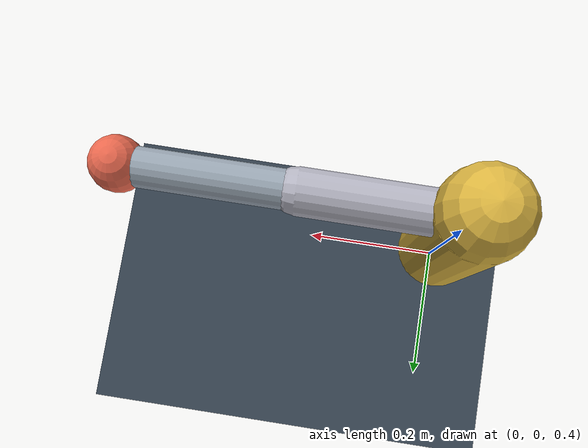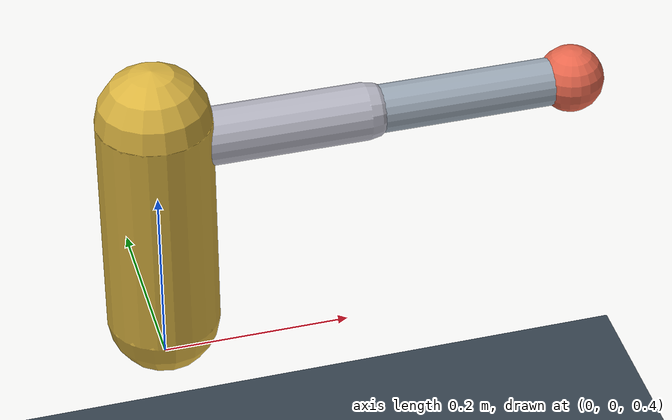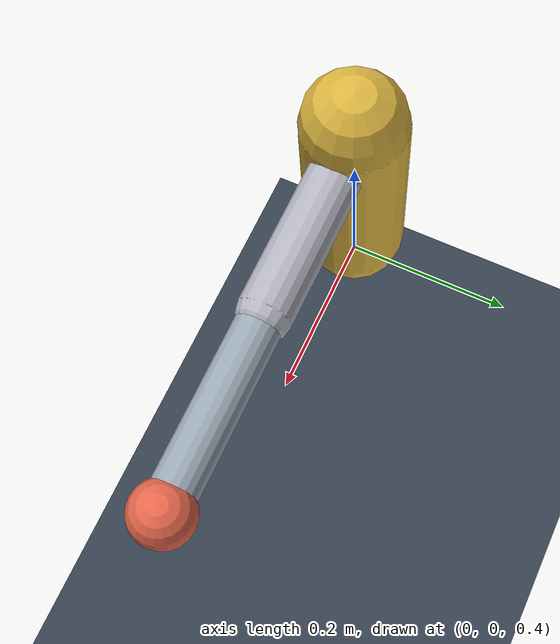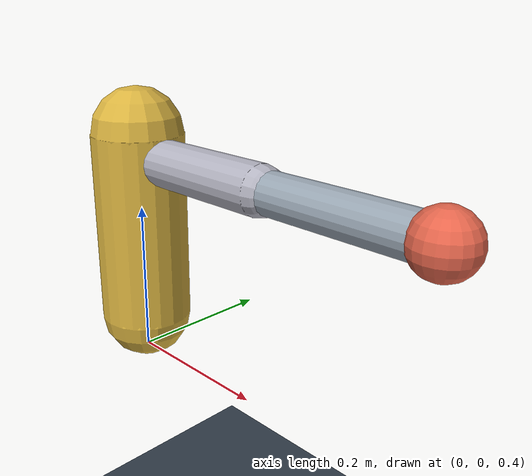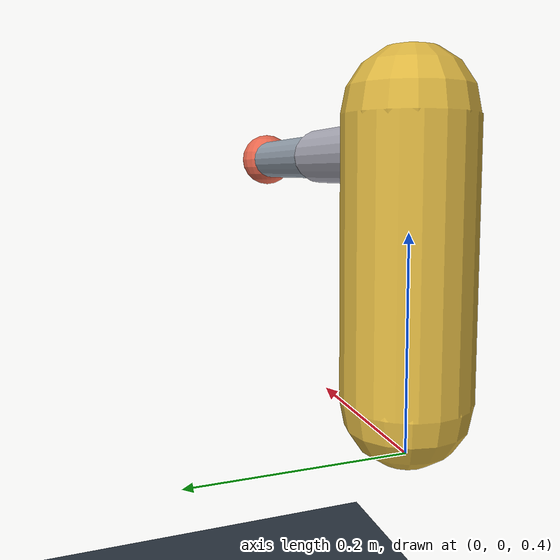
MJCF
<mujoco model="mini-arm">
  <compiler angle="radian"/>
  <default>
    <joint limited="true" range="-2.5 2.5"/>
    <position kp="120" dampratio="1" inheritrange="1"/>
  </default>
  <worldbody>
    <light pos="0 0 3"/>
    <geom type="plane" size="2 2 0.05" rgba="0.2 0.25 0.3 1"/>
    <body name="pelvis" pos="0 0 0.45">
      <geom type="capsule" fromto="0 0 0 0 0 0.25" size="0.06" rgba="0.85 0.7 0.25 1"/>
      <body name="right_shoulder_pitch_link" pos="0 0 0.22">
        <joint name="right_shoulder_pitch_joint" axis="0 1 0"/>
        <geom type="capsule" fromto="0 0 0 0.22 0 0" size="0.03" rgba="0.7 0.7 0.75 1"/>
        <body name="right_elbow_link" pos="0.22 0 0">
          <joint name="right_elbow_joint" axis="0 1 0"/>
          <geom type="capsule" fromto="0 0 0 0.22 0 0" size="0.025" rgba="0.6 0.65 0.7 1"/>
          <body name="right_wrist_yaw_link" pos="0.22 0 0">
            <geom type="sphere" size="0.035" rgba="0.9 0.4 0.3 1"/>
          </body>
        </body>
      </body>
    </body>
  </worldbody>
  <actuator>
    <position name="right_shoulder_pitch_joint" joint="right_shoulder_pitch_joint"/>
    <position name="right_elbow_joint" joint="right_elbow_joint"/>
  </actuator>
</mujoco>
